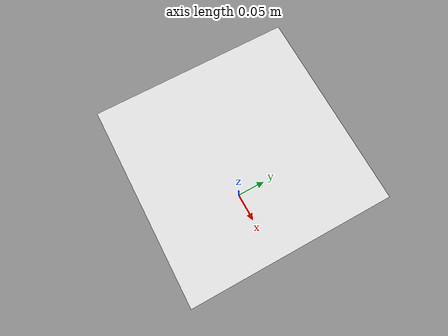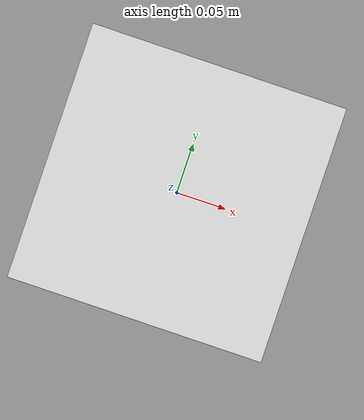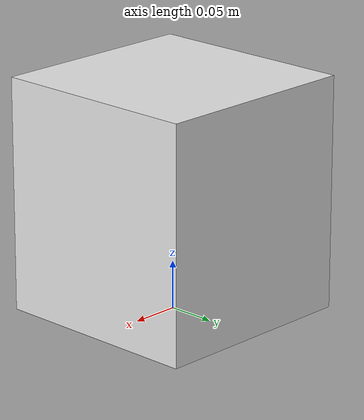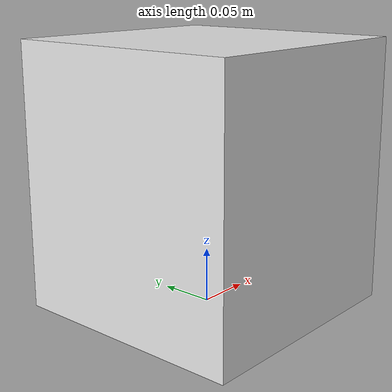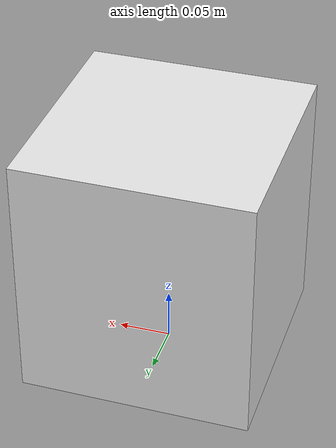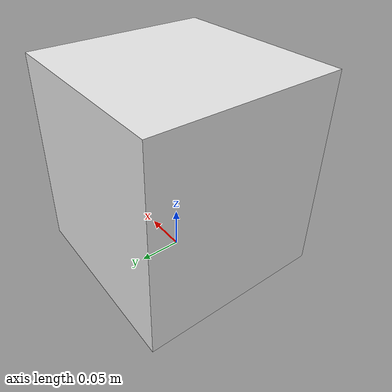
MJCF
<mujoco model="meta_quest_boxes">
    <worldbody>
        <body name="meta_quest_boxes" pos="0 0 0" quat="1 0 0 0">
            <geom name="meta_quest_boxes_geom" type="box" pos="0.0 0.0 0.12" size="0.11 0.11 0.12" rgba="0.9 0.9 .9 1" mass="6" condim="4" friction="10 0.005 0.0001" />
        </body>
    </worldbody>
</mujoco>
